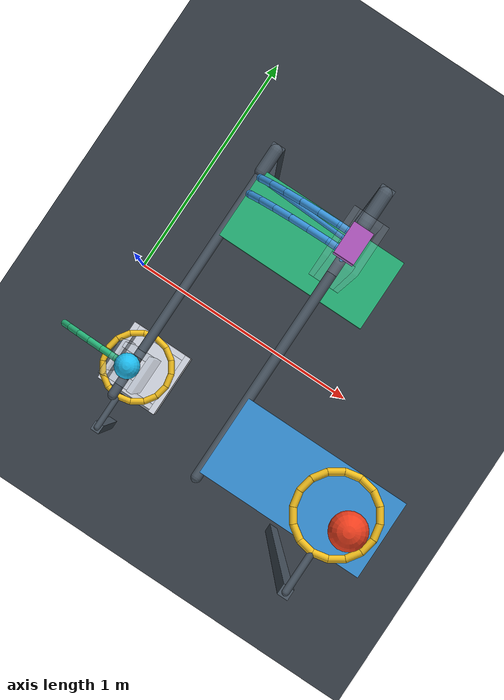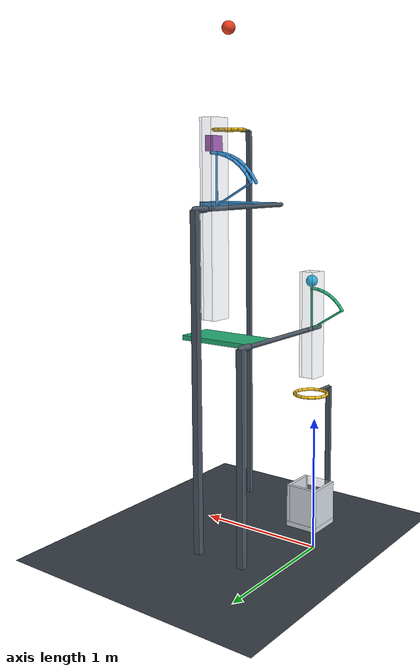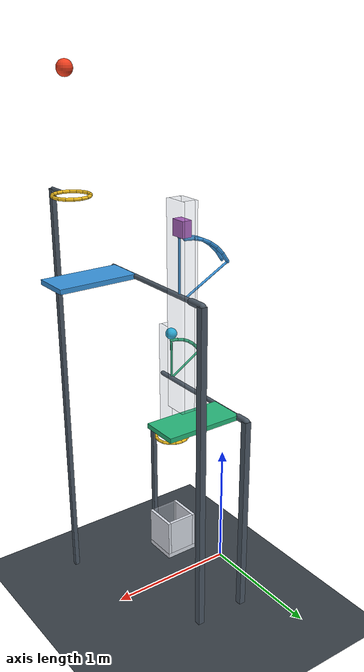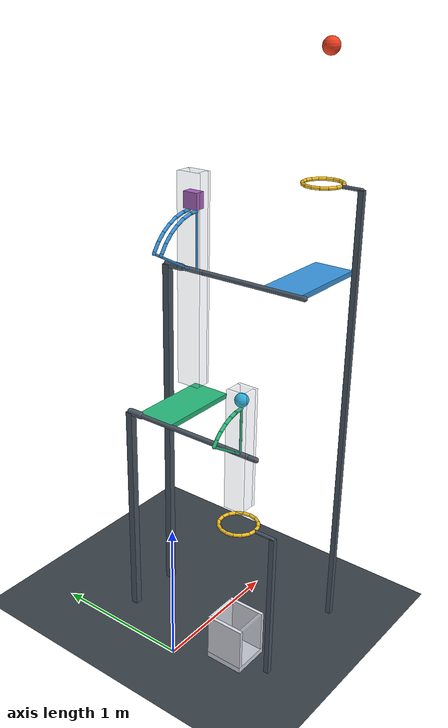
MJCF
<mujoco model="passive_two_stage_drop_corrected">
  <compiler angle="degree" autolimits="true"/>
  <option timestep="0.002" gravity="0 0 -9.81" integrator="implicitfast" iterations="100"/>
  <size njmax="3000" nconmax="600"/>

  <visual>
    <global azimuth="135" elevation="-18"/>
    <headlight ambient="0.4 0.4 0.4" diffuse="0.7 0.7 0.7" specular="0.2 0.2 0.2"/>
  </visual>

  <worldbody>
    <light name="overhead_light" pos="0 -2 6" dir="0 0 -1"/>
    <camera name="overview" pos="5 -7 4.5" xyaxes="0.814 0.581 0 -0.180 0.252 0.951"/>
    <geom name="floor" type="plane" size="6 6 0.1" rgba="0.22 0.25 0.28 1" friction="0.8 0.01 0.01" solref="0.008 1"/>

    <!-- Ball1 begins 0.8 m above hoop1's horizontal plane. -->
    <body name="ball1" pos="1.05 -0.35 3.95">
      <freejoint name="ball1_free"/>
      <geom name="ball1_sphere" type="sphere" size="0.055" mass="1.2" rgba="0.95 0.25 0.12 1" friction="0.5 0.01 0.01" solref="0.008 1"/>
    </body>

    <body name="hoop1" pos="1.05 -0.35 3.15">
      <geom name="hoop1_00" type="capsule" fromto="0.13 0 0 0.120104 0.049749 0" size="0.012" rgba="0.95 0.75 0.12 1"/>
      <geom name="hoop1_01" type="capsule" fromto="0.120104 0.049749 0 0.091924 0.091924 0" size="0.012" rgba="0.95 0.75 0.12 1"/>
      <geom name="hoop1_02" type="capsule" fromto="0.091924 0.091924 0 0.049749 0.120104 0" size="0.012" rgba="0.95 0.75 0.12 1"/>
      <geom name="hoop1_03" type="capsule" fromto="0.049749 0.120104 0 0 0.13 0" size="0.012" rgba="0.95 0.75 0.12 1"/>
      <geom name="hoop1_04" type="capsule" fromto="0 0.13 0 -0.049749 0.120104 0" size="0.012" rgba="0.95 0.75 0.12 1"/>
      <geom name="hoop1_05" type="capsule" fromto="-0.049749 0.120104 0 -0.091924 0.091924 0" size="0.012" rgba="0.95 0.75 0.12 1"/>
      <geom name="hoop1_06" type="capsule" fromto="-0.091924 0.091924 0 -0.120104 0.049749 0" size="0.012" rgba="0.95 0.75 0.12 1"/>
      <geom name="hoop1_07" type="capsule" fromto="-0.120104 0.049749 0 -0.13 0 0" size="0.012" rgba="0.95 0.75 0.12 1"/>
      <geom name="hoop1_08" type="capsule" fromto="-0.13 0 0 -0.120104 -0.049749 0" size="0.012" rgba="0.95 0.75 0.12 1"/>
      <geom name="hoop1_09" type="capsule" fromto="-0.120104 -0.049749 0 -0.091924 -0.091924 0" size="0.012" rgba="0.95 0.75 0.12 1"/>
      <geom name="hoop1_10" type="capsule" fromto="-0.091924 -0.091924 0 -0.049749 -0.120104 0" size="0.012" rgba="0.95 0.75 0.12 1"/>
      <geom name="hoop1_11" type="capsule" fromto="-0.049749 -0.120104 0 0 -0.13 0" size="0.012" rgba="0.95 0.75 0.12 1"/>
      <geom name="hoop1_12" type="capsule" fromto="0 -0.13 0 0.049749 -0.120104 0" size="0.012" rgba="0.95 0.75 0.12 1"/>
      <geom name="hoop1_13" type="capsule" fromto="0.049749 -0.120104 0 0.091924 -0.091924 0" size="0.012" rgba="0.95 0.75 0.12 1"/>
      <geom name="hoop1_14" type="capsule" fromto="0.091924 -0.091924 0 0.120104 -0.049749 0" size="0.012" rgba="0.95 0.75 0.12 1"/>
      <geom name="hoop1_15" type="capsule" fromto="0.120104 -0.049749 0 0.13 0 0" size="0.012" rgba="0.95 0.75 0.12 1"/>
    </body>

    <!-- Negative hinge angles swing the panels downward.
         The support cams withdraw near the -70 degree lower stops.
         Axles and spokes are visual structure, not payload obstacles. -->
    <body name="flap1" pos="0.65 0 2.55">
      <inertial pos="0.2 -0.2 0" mass="0.18" diaginertia="0.025 0.04 0.028"/>
      <joint name="flap1_hinge" type="hinge" axis="0 -1 0" range="-70 0" frictionloss="0.55" damping="0.025" armature="0.001" solreflimit="0.006 1"/>
      <geom name="flap1_panel" type="box" pos="0.3 -0.35 0" size="0.3 0.14 0.018" density="0" rgba="0.22 0.58 0.86 1" friction="0.4 0.005 0.005" solref="0.008 1"/>
      <geom name="flap1_axle" type="capsule" fromto="0 -0.51 0 0 0.47 0" size="0.018" density="0" contype="0" conaffinity="0" rgba="0.3 0.35 0.4 1"/>
      <geom name="flap1_spoke_a" type="capsule" fromto="0 0.32 0 0 0.32 0.4" size="0.008" density="0" contype="0" conaffinity="0" rgba="0.22 0.58 0.86 1"/>
      <geom name="flap1_spoke_b" type="capsule" fromto="0 0.38 0 -0.351527 0.38 0.190864" size="0.008" density="0" contype="0" conaffinity="0" rgba="0.22 0.58 0.86 1"/>

      <geom name="flap1_cam_a0" type="capsule" fromto="0 0.32 0.4 -0.069459 0.32 0.393923" size="0.012" density="0" priority="1" rgba="0.22 0.58 0.86 1" friction="0.02 0.001 0.001" solref="0.008 1"/>
      <geom name="flap1_cam_a1" type="capsule" fromto="-0.069459 0.32 0.393923 -0.136808 0.32 0.375877" size="0.012" density="0" priority="1" rgba="0.22 0.58 0.86 1" friction="0.02 0.001 0.001" solref="0.008 1"/>
      <geom name="flap1_cam_a2" type="capsule" fromto="-0.136808 0.32 0.375877 -0.2 0.32 0.346410" size="0.012" density="0" priority="1" rgba="0.22 0.58 0.86 1" friction="0.02 0.001 0.001" solref="0.008 1"/>
      <geom name="flap1_cam_a3" type="capsule" fromto="-0.2 0.32 0.346410 -0.257115 0.32 0.306418" size="0.012" density="0" priority="1" rgba="0.22 0.58 0.86 1" friction="0.02 0.001 0.001" solref="0.008 1"/>
      <geom name="flap1_cam_a4" type="capsule" fromto="-0.257115 0.32 0.306418 -0.306418 0.32 0.257115" size="0.012" density="0" priority="1" rgba="0.22 0.58 0.86 1" friction="0.02 0.001 0.001" solref="0.008 1"/>
      <geom name="flap1_cam_a5" type="capsule" fromto="-0.306418 0.32 0.257115 -0.346410 0.32 0.2" size="0.012" density="0" priority="1" rgba="0.22 0.58 0.86 1" friction="0.02 0.001 0.001" solref="0.008 1"/>
      <geom name="flap1_cam_a6" type="capsule" fromto="-0.346410 0.32 0.2 -0.351527 0.32 0.190864" size="0.012" density="0" priority="1" rgba="0.22 0.58 0.86 1" friction="0.02 0.001 0.001" solref="0.008 1"/>

      <geom name="flap1_cam_b0" type="capsule" fromto="0 0.38 0.4 -0.069459 0.38 0.393923" size="0.012" density="0" priority="1" rgba="0.22 0.58 0.86 1" friction="0.02 0.001 0.001" solref="0.008 1"/>
      <geom name="flap1_cam_b1" type="capsule" fromto="-0.069459 0.38 0.393923 -0.136808 0.38 0.375877" size="0.012" density="0" priority="1" rgba="0.22 0.58 0.86 1" friction="0.02 0.001 0.001" solref="0.008 1"/>
      <geom name="flap1_cam_b2" type="capsule" fromto="-0.136808 0.38 0.375877 -0.2 0.38 0.346410" size="0.012" density="0" priority="1" rgba="0.22 0.58 0.86 1" friction="0.02 0.001 0.001" solref="0.008 1"/>
      <geom name="flap1_cam_b3" type="capsule" fromto="-0.2 0.38 0.346410 -0.257115 0.38 0.306418" size="0.012" density="0" priority="1" rgba="0.22 0.58 0.86 1" friction="0.02 0.001 0.001" solref="0.008 1"/>
      <geom name="flap1_cam_b4" type="capsule" fromto="-0.257115 0.38 0.306418 -0.306418 0.38 0.257115" size="0.012" density="0" priority="1" rgba="0.22 0.58 0.86 1" friction="0.02 0.001 0.001" solref="0.008 1"/>
      <geom name="flap1_cam_b5" type="capsule" fromto="-0.306418 0.38 0.257115 -0.346410 0.38 0.2" size="0.012" density="0" priority="1" rgba="0.22 0.58 0.86 1" friction="0.02 0.001 0.001" solref="0.008 1"/>
      <geom name="flap1_cam_b6" type="capsule" fromto="-0.346410 0.38 0.2 -0.351527 0.38 0.190864" size="0.012" density="0" priority="1" rgba="0.22 0.58 0.86 1" friction="0.02 0.001 0.001" solref="0.008 1"/>
    </body>

    <body name="block" pos="0.65 0.35 3.017">
      <freejoint name="block_free"/>
      <geom name="block_box" type="box" size="0.035 0.055 0.055" mass="0.4" contype="3" conaffinity="3" rgba="0.72 0.35 0.78 1" friction="0.06 0.001 0.001" solref="0.008 1"/>
    </body>

    <!-- Guide bit 2 contacts the payloads but not the flap cams.
         Higher contact priority makes the guide walls frictionless. -->
    <body name="block_guide" pos="0.65 0.35 2.47">
      <geom name="block_guide_left" type="box" pos="-0.051 0 0" size="0.01 0.085 0.73" contype="2" conaffinity="2" priority="2" rgba="0.65 0.72 0.8 0.22" friction="0 0 0" solref="0.008 1"/>
      <geom name="block_guide_right" type="box" pos="0.051 0 0" size="0.01 0.085 0.73" contype="2" conaffinity="2" priority="2" rgba="0.65 0.72 0.8 0.22" friction="0 0 0" solref="0.008 1"/>
      <geom name="block_guide_front" type="box" pos="0 -0.075 0" size="0.041 0.01 0.73" contype="2" conaffinity="2" priority="2" rgba="0.65 0.72 0.8 0.22" friction="0 0 0" solref="0.008 1"/>
      <geom name="block_guide_back" type="box" pos="0 0.075 0" size="0.041 0.01 0.73" contype="2" conaffinity="2" priority="2" rgba="0.65 0.72 0.8 0.22" friction="0 0 0" solref="0.008 1"/>
    </body>

    <body name="flap2" pos="0.25 0 1.6">
      <inertial pos="0.2 0.2 0" mass="0.12" diaginertia="0.02 0.028 0.015"/>
      <joint name="flap2_hinge" type="hinge" axis="0 -1 0" range="-70 0" frictionloss="0.4" damping="0.02" armature="0.001" solreflimit="0.006 1"/>
      <geom name="flap2_panel" type="box" pos="0.3 0.35 0" size="0.3 0.14 0.018" density="0" rgba="0.15 0.72 0.48 1" friction="0.4 0.005 0.005" solref="0.008 1"/>
      <geom name="flap2_axle" type="capsule" fromto="0 -0.47 0 0 0.51 0" size="0.018" density="0" contype="0" conaffinity="0" rgba="0.3 0.35 0.4 1"/>
      <geom name="flap2_spoke_a" type="capsule" fromto="0 -0.35 0 0 -0.35 0.32" size="0.008" density="0" contype="0" conaffinity="0" rgba="0.15 0.72 0.48 1"/>
      <geom name="flap2_spoke_b" type="capsule" fromto="0 -0.35 0 -0.271376 -0.35 0.169574" size="0.008" density="0" contype="0" conaffinity="0" rgba="0.15 0.72 0.48 1"/>

      <geom name="flap2_cam_0" type="capsule" fromto="0 -0.35 0.32 -0.055567 -0.35 0.315138" size="0.012" density="0" priority="1" rgba="0.15 0.72 0.48 1" friction="0.02 0.001 0.001" solref="0.008 1"/>
      <geom name="flap2_cam_1" type="capsule" fromto="-0.055567 -0.35 0.315138 -0.109446 -0.35 0.300702" size="0.012" density="0" priority="1" rgba="0.15 0.72 0.48 1" friction="0.02 0.001 0.001" solref="0.008 1"/>
      <geom name="flap2_cam_2" type="capsule" fromto="-0.109446 -0.35 0.300702 -0.16 -0.35 0.277128" size="0.012" density="0" priority="1" rgba="0.15 0.72 0.48 1" friction="0.02 0.001 0.001" solref="0.008 1"/>
      <geom name="flap2_cam_3" type="capsule" fromto="-0.16 -0.35 0.277128 -0.205692 -0.35 0.245134" size="0.012" density="0" priority="1" rgba="0.15 0.72 0.48 1" friction="0.02 0.001 0.001" solref="0.008 1"/>
      <geom name="flap2_cam_4" type="capsule" fromto="-0.205692 -0.35 0.245134 -0.245134 -0.35 0.205692" size="0.012" density="0" priority="1" rgba="0.15 0.72 0.48 1" friction="0.02 0.001 0.001" solref="0.008 1"/>
      <geom name="flap2_cam_5" type="capsule" fromto="-0.245134 -0.35 0.205692 -0.271376 -0.35 0.169574" size="0.012" density="0" priority="1" rgba="0.15 0.72 0.48 1" friction="0.02 0.001 0.001" solref="0.008 1"/>
    </body>

    <body name="ball2" pos="0.25 -0.35 1.977">
      <freejoint name="ball2_free"/>
      <geom name="ball2_sphere" type="sphere" size="0.045" mass="0.12" contype="3" conaffinity="3" rgba="0.12 0.75 0.95 1" friction="0.35 0.015 0.015" solref="0.008 1"/>
    </body>

    <body name="ball2_guide" pos="0.25 -0.35 1.635">
      <geom name="ball2_guide_left" type="box" pos="-0.057 0 0" size="0.01 0.07 0.415" contype="2" conaffinity="2" priority="2" rgba="0.65 0.72 0.8 0.22" friction="0 0 0" solref="0.008 1"/>
      <geom name="ball2_guide_right" type="box" pos="0.057 0 0" size="0.01 0.07 0.415" contype="2" conaffinity="2" priority="2" rgba="0.65 0.72 0.8 0.22" friction="0 0 0" solref="0.008 1"/>
      <geom name="ball2_guide_front" type="box" pos="0 -0.057 0" size="0.047 0.01 0.415" contype="2" conaffinity="2" priority="2" rgba="0.65 0.72 0.8 0.22" friction="0 0 0" solref="0.008 1"/>
      <geom name="ball2_guide_back" type="box" pos="0 0.057 0" size="0.047 0.01 0.415" contype="2" conaffinity="2" priority="2" rgba="0.65 0.72 0.8 0.22" friction="0 0 0" solref="0.008 1"/>
    </body>

    <body name="hoop2" pos="0.25 -0.35 1.08">
      <geom name="hoop2_00" type="capsule" fromto="0.13 0 0 0.120104 0.049749 0" size="0.012" rgba="0.95 0.75 0.12 1"/>
      <geom name="hoop2_01" type="capsule" fromto="0.120104 0.049749 0 0.091924 0.091924 0" size="0.012" rgba="0.95 0.75 0.12 1"/>
      <geom name="hoop2_02" type="capsule" fromto="0.091924 0.091924 0 0.049749 0.120104 0" size="0.012" rgba="0.95 0.75 0.12 1"/>
      <geom name="hoop2_03" type="capsule" fromto="0.049749 0.120104 0 0 0.13 0" size="0.012" rgba="0.95 0.75 0.12 1"/>
      <geom name="hoop2_04" type="capsule" fromto="0 0.13 0 -0.049749 0.120104 0" size="0.012" rgba="0.95 0.75 0.12 1"/>
      <geom name="hoop2_05" type="capsule" fromto="-0.049749 0.120104 0 -0.091924 0.091924 0" size="0.012" rgba="0.95 0.75 0.12 1"/>
      <geom name="hoop2_06" type="capsule" fromto="-0.091924 0.091924 0 -0.120104 0.049749 0" size="0.012" rgba="0.95 0.75 0.12 1"/>
      <geom name="hoop2_07" type="capsule" fromto="-0.120104 0.049749 0 -0.13 0 0" size="0.012" rgba="0.95 0.75 0.12 1"/>
      <geom name="hoop2_08" type="capsule" fromto="-0.13 0 0 -0.120104 -0.049749 0" size="0.012" rgba="0.95 0.75 0.12 1"/>
      <geom name="hoop2_09" type="capsule" fromto="-0.120104 -0.049749 0 -0.091924 -0.091924 0" size="0.012" rgba="0.95 0.75 0.12 1"/>
      <geom name="hoop2_10" type="capsule" fromto="-0.091924 -0.091924 0 -0.049749 -0.120104 0" size="0.012" rgba="0.95 0.75 0.12 1"/>
      <geom name="hoop2_11" type="capsule" fromto="-0.049749 -0.120104 0 0 -0.13 0" size="0.012" rgba="0.95 0.75 0.12 1"/>
      <geom name="hoop2_12" type="capsule" fromto="0 -0.13 0 0.049749 -0.120104 0" size="0.012" rgba="0.95 0.75 0.12 1"/>
      <geom name="hoop2_13" type="capsule" fromto="0.049749 -0.120104 0 0.091924 -0.091924 0" size="0.012" rgba="0.95 0.75 0.12 1"/>
      <geom name="hoop2_14" type="capsule" fromto="0.091924 -0.091924 0 0.120104 -0.049749 0" size="0.012" rgba="0.95 0.75 0.12 1"/>
      <geom name="hoop2_15" type="capsule" fromto="0.120104 -0.049749 0 0.13 0 0" size="0.012" rgba="0.95 0.75 0.12 1"/>
    </body>

    <body name="cup" pos="0.25 -0.35 0">
      <geom name="cup_bottom" type="box" pos="0 0 0.02" size="0.135 0.135 0.02" rgba="0.86 0.88 0.92 1" friction="0.8 0.025 0.025" solref="0.008 1"/>
      <geom name="cup_left" type="box" pos="-0.1225 0 0.19" size="0.0125 0.135 0.15" rgba="0.86 0.88 0.92 1" friction="0.8 0.025 0.025" solref="0.008 1"/>
      <geom name="cup_right" type="box" pos="0.1225 0 0.19" size="0.0125 0.135 0.15" rgba="0.86 0.88 0.92 1" friction="0.8 0.025 0.025" solref="0.008 1"/>
      <geom name="cup_front" type="box" pos="0 -0.1225 0.19" size="0.11 0.0125 0.15" rgba="0.86 0.88 0.92 0.4" friction="0.8 0.025 0.025" solref="0.008 1"/>
      <geom name="cup_back" type="box" pos="0 0.1225 0.19" size="0.11 0.0125 0.15" rgba="0.86 0.88 0.92 1" friction="0.8 0.025 0.025" solref="0.008 1"/>
    </body>

    <body name="frame" pos="0 0 0">
      <geom name="frame_flap1_post" type="box" pos="0.65 0.57 1.275" size="0.025 0.025 1.275" contype="0" conaffinity="0" rgba="0.3 0.35 0.4 1"/>
      <geom name="frame_flap1_bearing" type="capsule" fromto="0.65 0.45 2.55 0.65 0.57 2.55" size="0.025" contype="0" conaffinity="0" rgba="0.3 0.35 0.4 1"/>
      <geom name="frame_flap2_post" type="box" pos="0.25 0.57 0.8" size="0.025 0.025 0.8" contype="0" conaffinity="0" rgba="0.3 0.35 0.4 1"/>
      <geom name="frame_flap2_bearing" type="capsule" fromto="0.25 0.48 1.6 0.25 0.57 1.6" size="0.025" contype="0" conaffinity="0" rgba="0.3 0.35 0.4 1"/>
      <geom name="frame_hoop1_post" type="box" pos="1.05 -0.62 1.575" size="0.018 0.018 1.575" contype="0" conaffinity="0" rgba="0.3 0.35 0.4 1"/>
      <geom name="frame_hoop1_arm" type="capsule" fromto="1.05 -0.62 3.15 1.05 -0.48 3.15" size="0.012" contype="0" conaffinity="0" rgba="0.3 0.35 0.4 1"/>
      <geom name="frame_hoop2_post" type="box" pos="0.25 -0.62 0.54" size="0.018 0.018 0.54" contype="0" conaffinity="0" rgba="0.3 0.35 0.4 1"/>
      <geom name="frame_hoop2_arm" type="capsule" fromto="0.25 -0.62 1.08 0.25 -0.48 1.08" size="0.012" contype="0" conaffinity="0" rgba="0.3 0.35 0.4 1"/>
    </body>
  </worldbody>

  <keyframe>
    <key name="start" qpos="1.05 -0.35 3.95 1 0 0 0 0 0.65 0.35 3.017 1 0 0 0 0 0.25 -0.35 1.977 1 0 0 0" qvel="0 0 0 0 0 0 0 0 0 0 0 0 0 0 0 0 0 0 0 0"/>
  </keyframe>
</mujoco>
